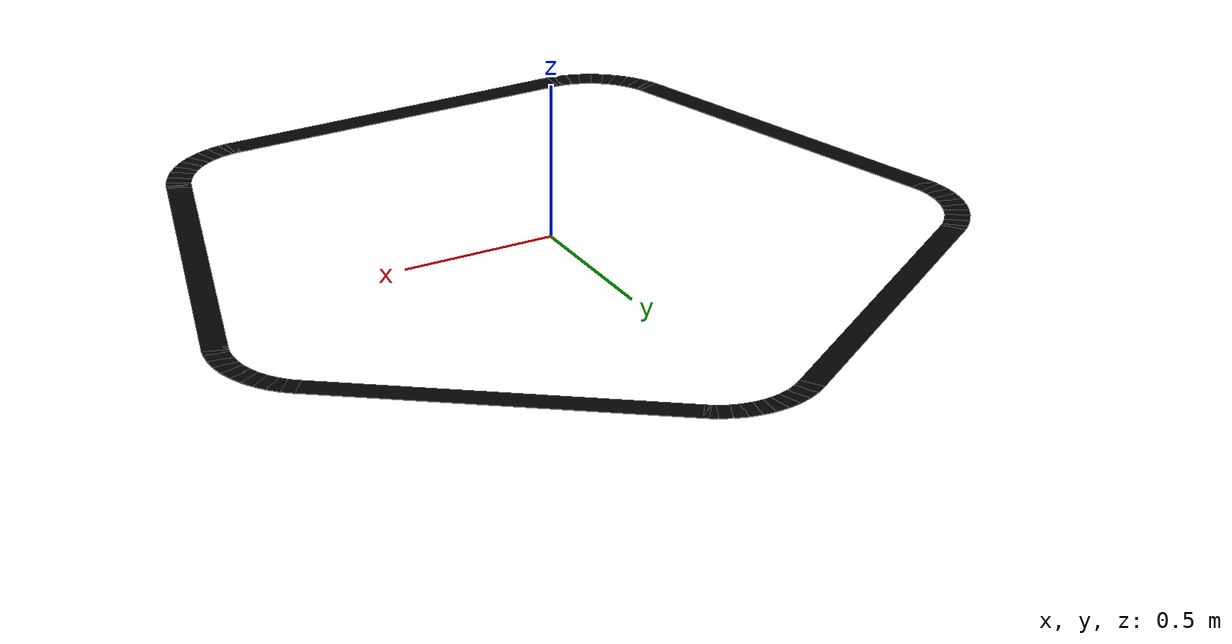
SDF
<?xml version="1.0"?>
<sdf version="1.8">
  <model name="line_track_pentagon">
    <static>true</static>
    <link name="track">
      <visual name='seg_000'>
        <pose>-0.160748 1.232478 0.001000 0.000000 0.000000 0.565487</pose>
        <geometry>
          <box>
            <size>0.040715 0.080000 0.002000</size>
          </box>
        </geometry>
      <material>
        <ambient>0.02 0.02 0.02 1</ambient>
        <diffuse>0.02 0.02 0.02 1</diffuse>
        <specular>0.0 0.0 0.0 1</specular>
      </material>
      </visual>
      <visual name='seg_001'>
        <pose>-0.127734 1.250628 0.001000 0.000000 0.000000 0.439823</pose>
        <geometry>
          <box>
            <size>0.040715 0.080000 0.002000</size>
          </box>
        </geometry>
      <material>
        <ambient>0.02 0.02 0.02 1</ambient>
        <diffuse>0.02 0.02 0.02 1</diffuse>
        <specular>0.0 0.0 0.0 1</specular>
      </material>
      </visual>
      <visual name='seg_002'>
        <pose>-0.092705 1.264497 0.001000 0.000000 0.000000 0.314159</pose>
        <geometry>
          <box>
            <size>0.040715 0.080000 0.002000</size>
          </box>
        </geometry>
      <material>
        <ambient>0.02 0.02 0.02 1</ambient>
        <diffuse>0.02 0.02 0.02 1</diffuse>
        <specular>0.0 0.0 0.0 1</specular>
      </material>
      </visual>
      <visual name='seg_003'>
        <pose>-0.056214 1.273866 0.001000 0.000000 0.000000 0.188496</pose>
        <geometry>
          <box>
            <size>0.040715 0.080000 0.002000</size>
          </box>
        </geometry>
      <material>
        <ambient>0.02 0.02 0.02 1</ambient>
        <diffuse>0.02 0.02 0.02 1</diffuse>
        <specular>0.0 0.0 0.0 1</specular>
      </material>
      </visual>
      <visual name='seg_004'>
        <pose>-0.018837 1.278588 0.001000 0.000000 0.000000 0.062832</pose>
        <geometry>
          <box>
            <size>0.040715 0.080000 0.002000</size>
          </box>
        </geometry>
      <material>
        <ambient>0.02 0.02 0.02 1</ambient>
        <diffuse>0.02 0.02 0.02 1</diffuse>
        <specular>0.0 0.0 0.0 1</specular>
      </material>
      </visual>
      <visual name='seg_005'>
        <pose>0.018837 1.278588 0.001000 0.000000 0.000000 -0.062832</pose>
        <geometry>
          <box>
            <size>0.040715 0.080000 0.002000</size>
          </box>
        </geometry>
      <material>
        <ambient>0.02 0.02 0.02 1</ambient>
        <diffuse>0.02 0.02 0.02 1</diffuse>
        <specular>0.0 0.0 0.0 1</specular>
      </material>
      </visual>
      <visual name='seg_006'>
        <pose>0.056214 1.273866 0.001000 0.000000 0.000000 -0.188496</pose>
        <geometry>
          <box>
            <size>0.040715 0.080000 0.002000</size>
          </box>
        </geometry>
      <material>
        <ambient>0.02 0.02 0.02 1</ambient>
        <diffuse>0.02 0.02 0.02 1</diffuse>
        <specular>0.0 0.0 0.0 1</specular>
      </material>
      </visual>
      <visual name='seg_007'>
        <pose>0.092705 1.264497 0.001000 0.000000 0.000000 -0.314159</pose>
        <geometry>
          <box>
            <size>0.040715 0.080000 0.002000</size>
          </box>
        </geometry>
      <material>
        <ambient>0.02 0.02 0.02 1</ambient>
        <diffuse>0.02 0.02 0.02 1</diffuse>
        <specular>0.0 0.0 0.0 1</specular>
      </material>
      </visual>
      <visual name='seg_008'>
        <pose>0.127734 1.250628 0.001000 0.000000 0.000000 -0.439823</pose>
        <geometry>
          <box>
            <size>0.040715 0.080000 0.002000</size>
          </box>
        </geometry>
      <material>
        <ambient>0.02 0.02 0.02 1</ambient>
        <diffuse>0.02 0.02 0.02 1</diffuse>
        <specular>0.0 0.0 0.0 1</specular>
      </material>
      </visual>
      <visual name='seg_009'>
        <pose>0.160748 1.232478 0.001000 0.000000 0.000000 -0.565487</pose>
        <geometry>
          <box>
            <size>0.040715 0.080000 0.002000</size>
          </box>
        </geometry>
      <material>
        <ambient>0.02 0.02 0.02 1</ambient>
        <diffuse>0.02 0.02 0.02 1</diffuse>
        <specular>0.0 0.0 0.0 1</specular>
      </material>
      </visual>
      <visual name='seg_010'>
        <pose>-0.641963 0.883586 0.001000 0.000000 0.000000 -2.513274</pose>
        <geometry>
          <box>
            <size>1.185628 0.080000 0.002000</size>
          </box>
        </geometry>
      <material>
        <ambient>0.02 0.02 0.02 1</ambient>
        <diffuse>0.02 0.02 0.02 1</diffuse>
        <specular>0.0 0.0 0.0 1</specular>
      </material>
      </visual>
      <visual name='seg_011'>
        <pose>-1.221830 0.227976 0.001000 0.000000 0.000000 -4.461062</pose>
        <geometry>
          <box>
            <size>0.040715 0.080000 0.002000</size>
          </box>
        </geometry>
      <material>
        <ambient>0.02 0.02 0.02 1</ambient>
        <diffuse>0.02 0.02 0.02 1</diffuse>
        <specular>0.0 0.0 0.0 1</specular>
      </material>
      </visual>
      <visual name='seg_012'>
        <pose>-1.228890 0.264983 0.001000 0.000000 0.000000 -4.586725</pose>
        <geometry>
          <box>
            <size>0.040715 0.080000 0.002000</size>
          </box>
        </geometry>
      <material>
        <ambient>0.02 0.02 0.02 1</ambient>
        <diffuse>0.02 0.02 0.02 1</diffuse>
        <specular>0.0 0.0 0.0 1</specular>
      </material>
      </visual>
      <visual name='seg_013'>
        <pose>-1.231255 0.302583 0.001000 0.000000 0.000000 -4.712389</pose>
        <geometry>
          <box>
            <size>0.040715 0.080000 0.002000</size>
          </box>
        </geometry>
      <material>
        <ambient>0.02 0.02 0.02 1</ambient>
        <diffuse>0.02 0.02 0.02 1</diffuse>
        <specular>0.0 0.0 0.0 1</specular>
      </material>
      </visual>
      <visual name='seg_014'>
        <pose>-1.228890 0.340183 0.001000 0.000000 0.000000 -4.838053</pose>
        <geometry>
          <box>
            <size>0.040715 0.080000 0.002000</size>
          </box>
        </geometry>
      <material>
        <ambient>0.02 0.02 0.02 1</ambient>
        <diffuse>0.02 0.02 0.02 1</diffuse>
        <specular>0.0 0.0 0.0 1</specular>
      </material>
      </visual>
      <visual name='seg_015'>
        <pose>-1.221830 0.377190 0.001000 0.000000 0.000000 -4.963716</pose>
        <geometry>
          <box>
            <size>0.040715 0.080000 0.002000</size>
          </box>
        </geometry>
      <material>
        <ambient>0.02 0.02 0.02 1</ambient>
        <diffuse>0.02 0.02 0.02 1</diffuse>
        <specular>0.0 0.0 0.0 1</specular>
      </material>
      </visual>
      <visual name='seg_016'>
        <pose>-1.210188 0.413021 0.001000 0.000000 0.000000 -5.089380</pose>
        <geometry>
          <box>
            <size>0.040715 0.080000 0.002000</size>
          </box>
        </geometry>
      <material>
        <ambient>0.02 0.02 0.02 1</ambient>
        <diffuse>0.02 0.02 0.02 1</diffuse>
        <specular>0.0 0.0 0.0 1</specular>
      </material>
      </visual>
      <visual name='seg_017'>
        <pose>-1.194147 0.447109 0.001000 0.000000 0.000000 -5.215044</pose>
        <geometry>
          <box>
            <size>0.040715 0.080000 0.002000</size>
          </box>
        </geometry>
      <material>
        <ambient>0.02 0.02 0.02 1</ambient>
        <diffuse>0.02 0.02 0.02 1</diffuse>
        <specular>0.0 0.0 0.0 1</specular>
      </material>
      </visual>
      <visual name='seg_018'>
        <pose>-1.173960 0.478919 0.001000 0.000000 0.000000 -5.340708</pose>
        <geometry>
          <box>
            <size>0.040715 0.080000 0.002000</size>
          </box>
        </geometry>
      <material>
        <ambient>0.02 0.02 0.02 1</ambient>
        <diffuse>0.02 0.02 0.02 1</diffuse>
        <specular>0.0 0.0 0.0 1</specular>
      </material>
      </visual>
      <visual name='seg_019'>
        <pose>-1.149946 0.507947 0.001000 0.000000 0.000000 -5.466371</pose>
        <geometry>
          <box>
            <size>0.040715 0.080000 0.002000</size>
          </box>
        </geometry>
      <material>
        <ambient>0.02 0.02 0.02 1</ambient>
        <diffuse>0.02 0.02 0.02 1</diffuse>
        <specular>0.0 0.0 0.0 1</specular>
      </material>
      </visual>
      <visual name='seg_020'>
        <pose>-1.122482 0.533737 0.001000 0.000000 0.000000 -5.592035</pose>
        <geometry>
          <box>
            <size>0.040715 0.080000 0.002000</size>
          </box>
        </geometry>
      <material>
        <ambient>0.02 0.02 0.02 1</ambient>
        <diffuse>0.02 0.02 0.02 1</diffuse>
        <specular>0.0 0.0 0.0 1</specular>
      </material>
      </visual>
      <visual name='seg_021'>
        <pose>-1.038718 -0.337500 0.001000 0.000000 0.000000 -1.256637</pose>
        <geometry>
          <box>
            <size>1.185628 0.080000 0.002000</size>
          </box>
        </geometry>
      <material>
        <ambient>0.02 0.02 0.02 1</ambient>
        <diffuse>0.02 0.02 0.02 1</diffuse>
        <specular>0.0 0.0 0.0 1</specular>
      </material>
      </visual>
      <visual name='seg_022'>
        <pose>-0.594384 -1.091581 0.001000 0.000000 0.000000 -3.204425</pose>
        <geometry>
          <box>
            <size>0.040715 0.080000 0.002000</size>
          </box>
        </geometry>
      <material>
        <ambient>0.02 0.02 0.02 1</ambient>
        <diffuse>0.02 0.02 0.02 1</diffuse>
        <specular>0.0 0.0 0.0 1</specular>
      </material>
      </visual>
      <visual name='seg_023'>
        <pose>-0.631762 -1.086859 0.001000 0.000000 0.000000 -3.330088</pose>
        <geometry>
          <box>
            <size>0.040715 0.080000 0.002000</size>
          </box>
        </geometry>
      <material>
        <ambient>0.02 0.02 0.02 1</ambient>
        <diffuse>0.02 0.02 0.02 1</diffuse>
        <specular>0.0 0.0 0.0 1</specular>
      </material>
      </visual>
      <visual name='seg_024'>
        <pose>-0.668252 -1.077490 0.001000 0.000000 0.000000 -3.455752</pose>
        <geometry>
          <box>
            <size>0.040715 0.080000 0.002000</size>
          </box>
        </geometry>
      <material>
        <ambient>0.02 0.02 0.02 1</ambient>
        <diffuse>0.02 0.02 0.02 1</diffuse>
        <specular>0.0 0.0 0.0 1</specular>
      </material>
      </visual>
      <visual name='seg_025'>
        <pose>-0.703281 -1.063621 0.001000 0.000000 0.000000 -3.581416</pose>
        <geometry>
          <box>
            <size>0.040715 0.080000 0.002000</size>
          </box>
        </geometry>
      <material>
        <ambient>0.02 0.02 0.02 1</ambient>
        <diffuse>0.02 0.02 0.02 1</diffuse>
        <specular>0.0 0.0 0.0 1</specular>
      </material>
      </visual>
      <visual name='seg_026'>
        <pose>-0.736295 -1.045471 0.001000 0.000000 0.000000 -3.707079</pose>
        <geometry>
          <box>
            <size>0.040715 0.080000 0.002000</size>
          </box>
        </geometry>
      <material>
        <ambient>0.02 0.02 0.02 1</ambient>
        <diffuse>0.02 0.02 0.02 1</diffuse>
        <specular>0.0 0.0 0.0 1</specular>
      </material>
      </visual>
      <visual name='seg_027'>
        <pose>-0.766775 -1.023327 0.001000 0.000000 0.000000 -3.832743</pose>
        <geometry>
          <box>
            <size>0.040715 0.080000 0.002000</size>
          </box>
        </geometry>
      <material>
        <ambient>0.02 0.02 0.02 1</ambient>
        <diffuse>0.02 0.02 0.02 1</diffuse>
        <specular>0.0 0.0 0.0 1</specular>
      </material>
      </visual>
      <visual name='seg_028'>
        <pose>-0.794238 -0.997537 0.001000 0.000000 0.000000 -3.958407</pose>
        <geometry>
          <box>
            <size>0.040715 0.080000 0.002000</size>
          </box>
        </geometry>
      <material>
        <ambient>0.02 0.02 0.02 1</ambient>
        <diffuse>0.02 0.02 0.02 1</diffuse>
        <specular>0.0 0.0 0.0 1</specular>
      </material>
      </visual>
      <visual name='seg_029'>
        <pose>-0.818252 -0.968509 0.001000 0.000000 0.000000 -4.084070</pose>
        <geometry>
          <box>
            <size>0.040715 0.080000 0.002000</size>
          </box>
        </geometry>
      <material>
        <ambient>0.02 0.02 0.02 1</ambient>
        <diffuse>0.02 0.02 0.02 1</diffuse>
        <specular>0.0 0.0 0.0 1</specular>
      </material>
      </visual>
      <visual name='seg_030'>
        <pose>-0.838439 -0.936699 0.001000 0.000000 0.000000 -4.209734</pose>
        <geometry>
          <box>
            <size>0.040715 0.080000 0.002000</size>
          </box>
        </geometry>
      <material>
        <ambient>0.02 0.02 0.02 1</ambient>
        <diffuse>0.02 0.02 0.02 1</diffuse>
        <specular>0.0 0.0 0.0 1</specular>
      </material>
      </visual>
      <visual name='seg_031'>
        <pose>-0.854480 -0.902610 0.001000 0.000000 0.000000 -4.335398</pose>
        <geometry>
          <box>
            <size>0.040715 0.080000 0.002000</size>
          </box>
        </geometry>
      <material>
        <ambient>0.02 0.02 0.02 1</ambient>
        <diffuse>0.02 0.02 0.02 1</diffuse>
        <specular>0.0 0.0 0.0 1</specular>
      </material>
      </visual>
      <visual name='seg_032'>
        <pose>-0.000000 -1.092173 0.001000 0.000000 0.000000 -0.000000</pose>
        <geometry>
          <box>
            <size>1.185628 0.080000 0.002000</size>
          </box>
        </geometry>
      <material>
        <ambient>0.02 0.02 0.02 1</ambient>
        <diffuse>0.02 0.02 0.02 1</diffuse>
        <specular>0.0 0.0 0.0 1</specular>
      </material>
      </visual>
      <visual name='seg_033'>
        <pose>0.854480 -0.902610 0.001000 0.000000 0.000000 -1.947787</pose>
        <geometry>
          <box>
            <size>0.040715 0.080000 0.002000</size>
          </box>
        </geometry>
      <material>
        <ambient>0.02 0.02 0.02 1</ambient>
        <diffuse>0.02 0.02 0.02 1</diffuse>
        <specular>0.0 0.0 0.0 1</specular>
      </material>
      </visual>
      <visual name='seg_034'>
        <pose>0.838439 -0.936699 0.001000 0.000000 0.000000 -2.073451</pose>
        <geometry>
          <box>
            <size>0.040715 0.080000 0.002000</size>
          </box>
        </geometry>
      <material>
        <ambient>0.02 0.02 0.02 1</ambient>
        <diffuse>0.02 0.02 0.02 1</diffuse>
        <specular>0.0 0.0 0.0 1</specular>
      </material>
      </visual>
      <visual name='seg_035'>
        <pose>0.818252 -0.968509 0.001000 0.000000 0.000000 -2.199115</pose>
        <geometry>
          <box>
            <size>0.040715 0.080000 0.002000</size>
          </box>
        </geometry>
      <material>
        <ambient>0.02 0.02 0.02 1</ambient>
        <diffuse>0.02 0.02 0.02 1</diffuse>
        <specular>0.0 0.0 0.0 1</specular>
      </material>
      </visual>
      <visual name='seg_036'>
        <pose>0.794238 -0.997537 0.001000 0.000000 0.000000 -2.324779</pose>
        <geometry>
          <box>
            <size>0.040715 0.080000 0.002000</size>
          </box>
        </geometry>
      <material>
        <ambient>0.02 0.02 0.02 1</ambient>
        <diffuse>0.02 0.02 0.02 1</diffuse>
        <specular>0.0 0.0 0.0 1</specular>
      </material>
      </visual>
      <visual name='seg_037'>
        <pose>0.766775 -1.023327 0.001000 0.000000 0.000000 -2.450442</pose>
        <geometry>
          <box>
            <size>0.040715 0.080000 0.002000</size>
          </box>
        </geometry>
      <material>
        <ambient>0.02 0.02 0.02 1</ambient>
        <diffuse>0.02 0.02 0.02 1</diffuse>
        <specular>0.0 0.0 0.0 1</specular>
      </material>
      </visual>
      <visual name='seg_038'>
        <pose>0.736295 -1.045471 0.001000 0.000000 0.000000 -2.576106</pose>
        <geometry>
          <box>
            <size>0.040715 0.080000 0.002000</size>
          </box>
        </geometry>
      <material>
        <ambient>0.02 0.02 0.02 1</ambient>
        <diffuse>0.02 0.02 0.02 1</diffuse>
        <specular>0.0 0.0 0.0 1</specular>
      </material>
      </visual>
      <visual name='seg_039'>
        <pose>0.703281 -1.063621 0.001000 0.000000 0.000000 -2.701770</pose>
        <geometry>
          <box>
            <size>0.040715 0.080000 0.002000</size>
          </box>
        </geometry>
      <material>
        <ambient>0.02 0.02 0.02 1</ambient>
        <diffuse>0.02 0.02 0.02 1</diffuse>
        <specular>0.0 0.0 0.0 1</specular>
      </material>
      </visual>
      <visual name='seg_040'>
        <pose>0.668252 -1.077490 0.001000 0.000000 0.000000 -2.827433</pose>
        <geometry>
          <box>
            <size>0.040715 0.080000 0.002000</size>
          </box>
        </geometry>
      <material>
        <ambient>0.02 0.02 0.02 1</ambient>
        <diffuse>0.02 0.02 0.02 1</diffuse>
        <specular>0.0 0.0 0.0 1</specular>
      </material>
      </visual>
      <visual name='seg_041'>
        <pose>0.631762 -1.086859 0.001000 0.000000 0.000000 -2.953097</pose>
        <geometry>
          <box>
            <size>0.040715 0.080000 0.002000</size>
          </box>
        </geometry>
      <material>
        <ambient>0.02 0.02 0.02 1</ambient>
        <diffuse>0.02 0.02 0.02 1</diffuse>
        <specular>0.0 0.0 0.0 1</specular>
      </material>
      </visual>
      <visual name='seg_042'>
        <pose>0.594384 -1.091581 0.001000 0.000000 0.000000 -3.078761</pose>
        <geometry>
          <box>
            <size>0.040715 0.080000 0.002000</size>
          </box>
        </geometry>
      <material>
        <ambient>0.02 0.02 0.02 1</ambient>
        <diffuse>0.02 0.02 0.02 1</diffuse>
        <specular>0.0 0.0 0.0 1</specular>
      </material>
      </visual>
      <visual name='seg_043'>
        <pose>1.038718 -0.337500 0.001000 0.000000 0.000000 1.256637</pose>
        <geometry>
          <box>
            <size>1.185628 0.080000 0.002000</size>
          </box>
        </geometry>
      <material>
        <ambient>0.02 0.02 0.02 1</ambient>
        <diffuse>0.02 0.02 0.02 1</diffuse>
        <specular>0.0 0.0 0.0 1</specular>
      </material>
      </visual>
      <visual name='seg_044'>
        <pose>1.122482 0.533737 0.001000 0.000000 0.000000 -0.691150</pose>
        <geometry>
          <box>
            <size>0.040715 0.080000 0.002000</size>
          </box>
        </geometry>
      <material>
        <ambient>0.02 0.02 0.02 1</ambient>
        <diffuse>0.02 0.02 0.02 1</diffuse>
        <specular>0.0 0.0 0.0 1</specular>
      </material>
      </visual>
      <visual name='seg_045'>
        <pose>1.149946 0.507947 0.001000 0.000000 0.000000 -0.816814</pose>
        <geometry>
          <box>
            <size>0.040715 0.080000 0.002000</size>
          </box>
        </geometry>
      <material>
        <ambient>0.02 0.02 0.02 1</ambient>
        <diffuse>0.02 0.02 0.02 1</diffuse>
        <specular>0.0 0.0 0.0 1</specular>
      </material>
      </visual>
      <visual name='seg_046'>
        <pose>1.173960 0.478919 0.001000 0.000000 0.000000 -0.942478</pose>
        <geometry>
          <box>
            <size>0.040715 0.080000 0.002000</size>
          </box>
        </geometry>
      <material>
        <ambient>0.02 0.02 0.02 1</ambient>
        <diffuse>0.02 0.02 0.02 1</diffuse>
        <specular>0.0 0.0 0.0 1</specular>
      </material>
      </visual>
      <visual name='seg_047'>
        <pose>1.194147 0.447109 0.001000 0.000000 0.000000 -1.068142</pose>
        <geometry>
          <box>
            <size>0.040715 0.080000 0.002000</size>
          </box>
        </geometry>
      <material>
        <ambient>0.02 0.02 0.02 1</ambient>
        <diffuse>0.02 0.02 0.02 1</diffuse>
        <specular>0.0 0.0 0.0 1</specular>
      </material>
      </visual>
      <visual name='seg_048'>
        <pose>1.210188 0.413021 0.001000 0.000000 0.000000 -1.193805</pose>
        <geometry>
          <box>
            <size>0.040715 0.080000 0.002000</size>
          </box>
        </geometry>
      <material>
        <ambient>0.02 0.02 0.02 1</ambient>
        <diffuse>0.02 0.02 0.02 1</diffuse>
        <specular>0.0 0.0 0.0 1</specular>
      </material>
      </visual>
      <visual name='seg_049'>
        <pose>1.221830 0.377190 0.001000 0.000000 0.000000 -1.319469</pose>
        <geometry>
          <box>
            <size>0.040715 0.080000 0.002000</size>
          </box>
        </geometry>
      <material>
        <ambient>0.02 0.02 0.02 1</ambient>
        <diffuse>0.02 0.02 0.02 1</diffuse>
        <specular>0.0 0.0 0.0 1</specular>
      </material>
      </visual>
      <visual name='seg_050'>
        <pose>1.228890 0.340183 0.001000 0.000000 0.000000 -1.445133</pose>
        <geometry>
          <box>
            <size>0.040715 0.080000 0.002000</size>
          </box>
        </geometry>
      <material>
        <ambient>0.02 0.02 0.02 1</ambient>
        <diffuse>0.02 0.02 0.02 1</diffuse>
        <specular>0.0 0.0 0.0 1</specular>
      </material>
      </visual>
      <visual name='seg_051'>
        <pose>1.231255 0.302583 0.001000 0.000000 0.000000 -1.570796</pose>
        <geometry>
          <box>
            <size>0.040715 0.080000 0.002000</size>
          </box>
        </geometry>
      <material>
        <ambient>0.02 0.02 0.02 1</ambient>
        <diffuse>0.02 0.02 0.02 1</diffuse>
        <specular>0.0 0.0 0.0 1</specular>
      </material>
      </visual>
      <visual name='seg_052'>
        <pose>1.228890 0.264983 0.001000 0.000000 0.000000 -1.696460</pose>
        <geometry>
          <box>
            <size>0.040715 0.080000 0.002000</size>
          </box>
        </geometry>
      <material>
        <ambient>0.02 0.02 0.02 1</ambient>
        <diffuse>0.02 0.02 0.02 1</diffuse>
        <specular>0.0 0.0 0.0 1</specular>
      </material>
      </visual>
      <visual name='seg_053'>
        <pose>1.221830 0.227976 0.001000 0.000000 0.000000 -1.822124</pose>
        <geometry>
          <box>
            <size>0.040715 0.080000 0.002000</size>
          </box>
        </geometry>
      <material>
        <ambient>0.02 0.02 0.02 1</ambient>
        <diffuse>0.02 0.02 0.02 1</diffuse>
        <specular>0.0 0.0 0.0 1</specular>
      </material>
      </visual>
      <visual name='seg_054'>
        <pose>0.641963 0.883586 0.001000 0.000000 0.000000 2.513274</pose>
        <geometry>
          <box>
            <size>1.185628 0.080000 0.002000</size>
          </box>
        </geometry>
      <material>
        <ambient>0.02 0.02 0.02 1</ambient>
        <diffuse>0.02 0.02 0.02 1</diffuse>
        <specular>0.0 0.0 0.0 1</specular>
      </material>
      </visual>
    </link>
  </model>
</sdf>
